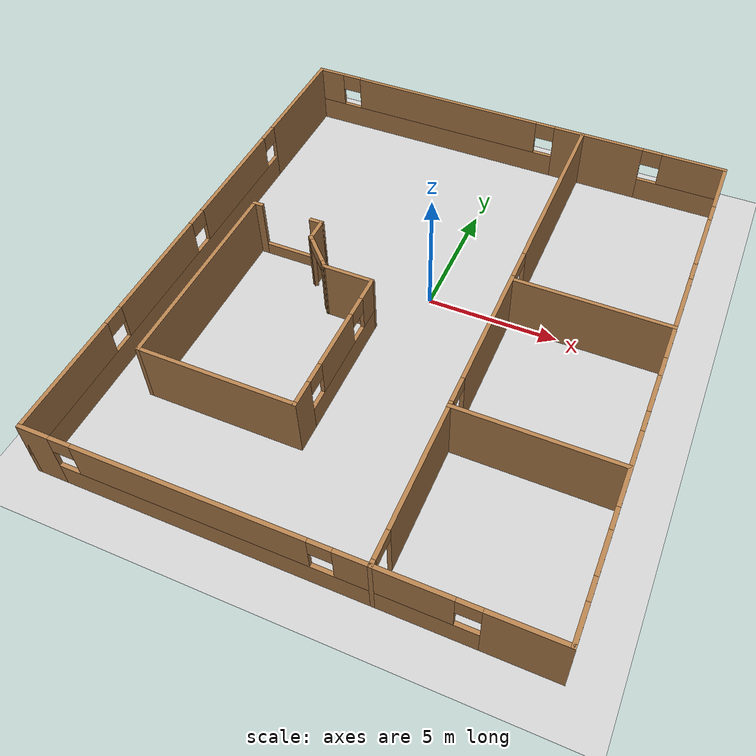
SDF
<sdf version="1.6">
 <world name="default">
  <model name="ground_plane">
   <static>1</static>
   <link name="link">
    <collision name="collision">
     <geometry><plane><normal>0 0 1</normal><size>100 100</size></plane></geometry>
     <surface>
      <contact><collide_bitmask>65535</collide_bitmask></contact>
      <friction><ode><mu>100</mu><mu2>50</mu2></ode></friction>
     </surface>
    </collision>
    <visual name="visual">
     <cast_shadows>0</cast_shadows>
     <geometry><plane><normal>0 0 1</normal><size>100 100</size></plane></geometry>
     <material>
      <script><uri>file://media/materials/scripts/gazebo.material</uri><name>Gazebo/Grey</name></script>
     </material>
    </visual>
   </link>
  </model>
  <scene><ambient>0.4 0.4 0.4 1</ambient><background>0.7 0.7 0.7 1</background><shadows>1</shadows></scene>
  <model name="hospital_room_empty_clone">
   <link name="Wall_0">
    <pose>-4e-06 -3.9165 0 0 -0 0</pose>
    <visual name="Wall_0_Visual">
     <pose>0 0 1.25 0 -0 0</pose>
     <geometry><box><size>6 0.15 2.5</size></box></geometry>
     <material>
      <script><uri>file://media/materials/scripts/gazebo.material</uri><name>Gazebo/Wood</name></script>
      <ambient>1 1 1 1</ambient>
     </material>
     <meta><layer>0</layer></meta>
    </visual>
    <collision name="Wall_0_Collision">
     <pose>0 0 1.25 0 -0 0</pose>
     <geometry><box><size>6 0.15 2.5</size></box></geometry>
     <surface>
      <friction>
       <ode><mu>1</mu><mu2>1</mu2><fdir1>0 0 0</fdir1><slip1>0</slip1><slip2>0</slip2></ode>
       <torsional>
        <coefficient>1</coefficient>
        <patch_radius>0</patch_radius>
        <surface_radius>0</surface_radius>
        <use_patch_radius>1</use_patch_radius>
        <ode><slip>0</slip></ode>
       </torsional>
      </friction>
      <bounce><restitution_coefficient>0</restitution_coefficient><threshold>1e+06</threshold></bounce>
      <contact>
       <collide_without_contact>0</collide_without_contact>
       <collide_without_contact_bitmask>1</collide_without_contact_bitmask>
       <collide_bitmask>1</collide_bitmask>
       <ode>
        <soft_cfm>0</soft_cfm>
        <soft_erp>0.2</soft_erp>
        <kp>1e+13</kp>
        <kd>1</kd>
        <max_vel>0.01</max_vel>
        <min_depth>0</min_depth>
       </ode>
       <bullet>
        <split_impulse>1</split_impulse>
        <split_impulse_penetration_threshold>-0.01</split_impulse_penetration_threshold>
        <soft_cfm>0</soft_cfm>
        <soft_erp>0.2</soft_erp>
        <kp>1e+13</kp>
        <kd>1</kd>
       </bullet>
      </contact>
     </surface>
    </collision>
   </link>
   <link name="Wall_3">
    <pose>-2.925 0 0 0 -0 1.5708</pose>
    <visual name="Wall_3_Visual">
     <pose>0 0 1.25 0 -0 0</pose>
     <geometry><box><size>7.98302 0.15 2.5</size></box></geometry>
     <material>
      <script><uri>file://media/materials/scripts/gazebo.material</uri><name>Gazebo/Wood</name></script>
      <ambient>1 1 1 1</ambient>
     </material>
     <meta><layer>0</layer></meta>
    </visual>
    <collision name="Wall_3_Collision">
     <pose>0 0 1.25 0 -0 0</pose>
     <geometry><box><size>7.98302 0.15 2.5</size></box></geometry>
     <surface>
      <friction>
       <ode><mu>1</mu><mu2>1</mu2><fdir1>0 0 0</fdir1><slip1>0</slip1><slip2>0</slip2></ode>
       <torsional>
        <coefficient>1</coefficient>
        <patch_radius>0</patch_radius>
        <surface_radius>0</surface_radius>
        <use_patch_radius>1</use_patch_radius>
        <ode><slip>0</slip></ode>
       </torsional>
      </friction>
      <bounce><restitution_coefficient>0</restitution_coefficient><threshold>1e+06</threshold></bounce>
      <contact>
       <collide_without_contact>0</collide_without_contact>
       <collide_without_contact_bitmask>1</collide_without_contact_bitmask>
       <collide_bitmask>1</collide_bitmask>
       <ode>
        <soft_cfm>0</soft_cfm>
        <soft_erp>0.2</soft_erp>
        <kp>1e+13</kp>
        <kd>1</kd>
        <max_vel>0.01</max_vel>
        <min_depth>0</min_depth>
       </ode>
       <bullet>
        <split_impulse>1</split_impulse>
        <split_impulse_penetration_threshold>-0.01</split_impulse_penetration_threshold>
        <soft_cfm>0</soft_cfm>
        <soft_erp>0.2</soft_erp>
        <kp>1e+13</kp>
        <kd>1</kd>
       </bullet>
      </contact>
     </surface>
    </collision>
   </link>
   <link name="Wall_4">
    <pose>-1.5 3.9165 0 0 -0 0</pose>
    <visual name="Wall_4_Visual_0">
     <pose>-1.28125 0 1.25 0 -0 0</pose>
     <geometry><box><size>0.437506 0.15 2.5</size></box></geometry>
     <material>
      <script><uri>file://media/materials/scripts/gazebo.material</uri><name>Gazebo/Wood</name></script>
      <ambient>1 1 1 1</ambient>
     </material>
     <meta><layer>0</layer></meta>
    </visual>
    <visual name="Wall_4_Visual_1">
     <pose>0.218753 0 0.25 0 -0 0</pose>
     <geometry><box><size>2.56249 0.15 0.5</size></box></geometry>
     <material>
      <script><uri>file://media/materials/scripts/gazebo.material</uri><name>Gazebo/Wood</name></script>
      <ambient>1 1 1 1</ambient>
     </material>
     <meta><layer>0</layer></meta>
    </visual>
    <visual name="Wall_4_Visual_2">
     <pose>1.21875 0 1.5 0 -0 0</pose>
     <geometry><box><size>0.562494 0.15 2</size></box></geometry>
     <material>
      <script><uri>file://media/materials/scripts/gazebo.material</uri><name>Gazebo/Wood</name></script>
      <ambient>1 1 1 1</ambient>
     </material>
     <meta><layer>0</layer></meta>
    </visual>
    <collision name="Wall_4_Collision_0">
     <pose>-1.28125 0 1.25 0 -0 0</pose>
     <geometry><box><size>0.437506 0.15 2.5</size></box></geometry>
     <surface>
      <friction>
       <ode><mu>1</mu><mu2>1</mu2><fdir1>0 0 0</fdir1><slip1>0</slip1><slip2>0</slip2></ode>
       <torsional>
        <coefficient>1</coefficient>
        <patch_radius>0</patch_radius>
        <surface_radius>0</surface_radius>
        <use_patch_radius>1</use_patch_radius>
        <ode><slip>0</slip></ode>
       </torsional>
      </friction>
      <bounce><restitution_coefficient>0</restitution_coefficient><threshold>1e+06</threshold></bounce>
      <contact>
       <collide_without_contact>0</collide_without_contact>
       <collide_without_contact_bitmask>1</collide_without_contact_bitmask>
       <collide_bitmask>1</collide_bitmask>
       <ode>
        <soft_cfm>0</soft_cfm>
        <soft_erp>0.2</soft_erp>
        <kp>1e+13</kp>
        <kd>1</kd>
        <max_vel>0.01</max_vel>
        <min_depth>0</min_depth>
       </ode>
       <bullet>
        <split_impulse>1</split_impulse>
        <split_impulse_penetration_threshold>-0.01</split_impulse_penetration_threshold>
        <soft_cfm>0</soft_cfm>
        <soft_erp>0.2</soft_erp>
        <kp>1e+13</kp>
        <kd>1</kd>
       </bullet>
      </contact>
     </surface>
    </collision>
    <collision name="Wall_4_Collision_1">
     <pose>0.218753 0 0.25 0 -0 0</pose>
     <geometry><box><size>2.56249 0.15 0.5</size></box></geometry>
     <surface>
      <friction>
       <ode><mu>1</mu><mu2>1</mu2><fdir1>0 0 0</fdir1><slip1>0</slip1><slip2>0</slip2></ode>
       <torsional>
        <coefficient>1</coefficient>
        <patch_radius>0</patch_radius>
        <surface_radius>0</surface_radius>
        <use_patch_radius>1</use_patch_radius>
        <ode><slip>0</slip></ode>
       </torsional>
      </friction>
      <bounce><restitution_coefficient>0</restitution_coefficient><threshold>1e+06</threshold></bounce>
      <contact>
       <collide_without_contact>0</collide_without_contact>
       <collide_without_contact_bitmask>1</collide_without_contact_bitmask>
       <collide_bitmask>1</collide_bitmask>
       <ode>
        <soft_cfm>0</soft_cfm>
        <soft_erp>0.2</soft_erp>
        <kp>1e+13</kp>
        <kd>1</kd>
        <max_vel>0.01</max_vel>
        <min_depth>0</min_depth>
       </ode>
       <bullet>
        <split_impulse>1</split_impulse>
        <split_impulse_penetration_threshold>-0.01</split_impulse_penetration_threshold>
        <soft_cfm>0</soft_cfm>
        <soft_erp>0.2</soft_erp>
        <kp>1e+13</kp>
        <kd>1</kd>
       </bullet>
      </contact>
     </surface>
    </collision>
    <collision name="Wall_4_Collision_2">
     <pose>1.21875 0 1.5 0 -0 0</pose>
     <geometry><box><size>0.562494 0.15 2</size></box></geometry>
     <surface>
      <friction>
       <ode><mu>1</mu><mu2>1</mu2><fdir1>0 0 0</fdir1><slip1>0</slip1><slip2>0</slip2></ode>
       <torsional>
        <coefficient>1</coefficient>
        <patch_radius>0</patch_radius>
        <surface_radius>0</surface_radius>
        <use_patch_radius>1</use_patch_radius>
        <ode><slip>0</slip></ode>
       </torsional>
      </friction>
      <bounce><restitution_coefficient>0</restitution_coefficient><threshold>1e+06</threshold></bounce>
      <contact>
       <collide_without_contact>0</collide_without_contact>
       <collide_without_contact_bitmask>1</collide_without_contact_bitmask>
       <collide_bitmask>1</collide_bitmask>
       <ode>
        <soft_cfm>0</soft_cfm>
        <soft_erp>0.2</soft_erp>
        <kp>1e+13</kp>
        <kd>1</kd>
        <max_vel>0.01</max_vel>
        <min_depth>0</min_depth>
       </ode>
       <bullet>
        <split_impulse>1</split_impulse>
        <split_impulse_penetration_threshold>-0.01</split_impulse_penetration_threshold>
        <soft_cfm>0</soft_cfm>
        <soft_erp>0.2</soft_erp>
        <kp>1e+13</kp>
        <kd>1</kd>
       </bullet>
      </contact>
     </surface>
    </collision>
   </link>
   <link name="Wall_5">
    <pose>-0.075004 3.4915 0 0 0 -1.5708</pose>
    <visual name="Wall_5_Visual">
     <pose>0 0 1.25 0 -0 0</pose>
     <geometry><box><size>1 0.15 2.5</size></box></geometry>
     <material>
      <script><uri>file://media/materials/scripts/gazebo.material</uri><name>Gazebo/Wood</name></script>
      <ambient>1 1 1 1</ambient>
     </material>
     <meta><layer>0</layer></meta>
    </visual>
    <collision name="Wall_5_Collision">
     <pose>0 0 1.25 0 -0 0</pose>
     <geometry><box><size>1 0.15 2.5</size></box></geometry>
     <surface>
      <friction>
       <ode><mu>1</mu><mu2>1</mu2><fdir1>0 0 0</fdir1><slip1>0</slip1><slip2>0</slip2></ode>
       <torsional>
        <coefficient>1</coefficient>
        <patch_radius>0</patch_radius>
        <surface_radius>0</surface_radius>
        <use_patch_radius>1</use_patch_radius>
        <ode><slip>0</slip></ode>
       </torsional>
      </friction>
      <bounce><restitution_coefficient>0</restitution_coefficient><threshold>1e+06</threshold></bounce>
      <contact>
       <collide_without_contact>0</collide_without_contact>
       <collide_without_contact_bitmask>1</collide_without_contact_bitmask>
       <collide_bitmask>1</collide_bitmask>
       <ode>
        <soft_cfm>0</soft_cfm>
        <soft_erp>0.2</soft_erp>
        <kp>1e+13</kp>
        <kd>1</kd>
        <max_vel>0.01</max_vel>
        <min_depth>0</min_depth>
       </ode>
       <bullet>
        <split_impulse>1</split_impulse>
        <split_impulse_penetration_threshold>-0.01</split_impulse_penetration_threshold>
        <soft_cfm>0</soft_cfm>
        <soft_erp>0.2</soft_erp>
        <kp>1e+13</kp>
        <kd>1</kd>
       </bullet>
      </contact>
     </surface>
    </collision>
   </link>
   <link name="Wall_7">
    <pose>2.925 -1 0 0 -0 1.5708</pose>
    <visual name="Wall_7_Visual_0">
     <pose>-2.47597 0 1.25 0 -0 0</pose>
     <geometry><box><size>1.03106 0.15 2.5</size></box></geometry>
     <material>
      <script><uri>file://media/materials/scripts/gazebo.material</uri><name>Gazebo/Wood</name></script>
      <ambient>0.921569 0.807843 0.615686 1</ambient>
     </material>
     <meta><layer>0</layer></meta>
    </visual>
    <visual name="Wall_7_Visual_1">
     <pose>0.515531 0 0.5 0 -0 0</pose>
     <geometry><box><size>4.95194 0.15 1</size></box></geometry>
     <material>
      <script><uri>file://media/materials/scripts/gazebo.material</uri><name>Gazebo/Wood</name></script>
      <ambient>0.921569 0.807843 0.615686 1</ambient>
     </material>
     <meta><layer>0</layer></meta>
    </visual>
    <visual name="Wall_7_Visual_2">
     <pose>0.016139 0 1.75 0 -0 0</pose>
     <geometry><box><size>2.35315 0.15 1.5</size></box></geometry>
     <material>
      <script><uri>file://media/materials/scripts/gazebo.material</uri><name>Gazebo/Wood</name></script>
      <ambient>0.921569 0.807843 0.615686 1</ambient>
     </material>
     <meta><layer>0</layer></meta>
    </visual>
    <visual name="Wall_7_Visual_3">
     <pose>2.49211 0 1.75 0 -0 0</pose>
     <geometry><box><size>0.998785 0.15 1.5</size></box></geometry>
     <material>
      <script><uri>file://media/materials/scripts/gazebo.material</uri><name>Gazebo/Wood</name></script>
      <ambient>0.921569 0.807843 0.615686 1</ambient>
     </material>
     <meta><layer>0</layer></meta>
    </visual>
    <visual name="Wall_7_Visual_4">
     <pose>-1.56044 0 2.15 0 -0 0</pose>
     <geometry><box><size>0.8 0.15 0.7</size></box></geometry>
     <material>
      <script><uri>file://media/materials/scripts/gazebo.material</uri><name>Gazebo/Wood</name></script>
      <ambient>0.921569 0.807843 0.615686 1</ambient>
     </material>
     <meta><layer>0</layer></meta>
    </visual>
    <visual name="Wall_7_Visual_5">
     <pose>1.59272 0 2.15 0 -0 0</pose>
     <geometry><box><size>0.8 0.15 0.7</size></box></geometry>
     <material>
      <script><uri>file://media/materials/scripts/gazebo.material</uri><name>Gazebo/Wood</name></script>
      <ambient>0.921569 0.807843 0.615686 1</ambient>
     </material>
     <meta><layer>0</layer></meta>
    </visual>
    <collision name="Wall_7_Collision_0">
     <pose>-2.47597 0 1.25 0 -0 0</pose>
     <geometry><box><size>1.03106 0.15 2.5</size></box></geometry>
     <surface>
      <friction>
       <ode><mu>1</mu><mu2>1</mu2><fdir1>0 0 0</fdir1><slip1>0</slip1><slip2>0</slip2></ode>
       <torsional>
        <coefficient>1</coefficient>
        <patch_radius>0</patch_radius>
        <surface_radius>0</surface_radius>
        <use_patch_radius>1</use_patch_radius>
        <ode><slip>0</slip></ode>
       </torsional>
      </friction>
      <bounce><restitution_coefficient>0</restitution_coefficient><threshold>1e+06</threshold></bounce>
      <contact>
       <collide_without_contact>0</collide_without_contact>
       <collide_without_contact_bitmask>1</collide_without_contact_bitmask>
       <collide_bitmask>1</collide_bitmask>
       <ode>
        <soft_cfm>0</soft_cfm>
        <soft_erp>0.2</soft_erp>
        <kp>1e+13</kp>
        <kd>1</kd>
        <max_vel>0.01</max_vel>
        <min_depth>0</min_depth>
       </ode>
       <bullet>
        <split_impulse>1</split_impulse>
        <split_impulse_penetration_threshold>-0.01</split_impulse_penetration_threshold>
        <soft_cfm>0</soft_cfm>
        <soft_erp>0.2</soft_erp>
        <kp>1e+13</kp>
        <kd>1</kd>
       </bullet>
      </contact>
     </surface>
    </collision>
    <collision name="Wall_7_Collision_1">
     <pose>0.515531 0 0.5 0 -0 0</pose>
     <geometry><box><size>4.95194 0.15 1</size></box></geometry>
     <surface>
      <friction>
       <ode><mu>1</mu><mu2>1</mu2><fdir1>0 0 0</fdir1><slip1>0</slip1><slip2>0</slip2></ode>
       <torsional>
        <coefficient>1</coefficient>
        <patch_radius>0</patch_radius>
        <surface_radius>0</surface_radius>
        <use_patch_radius>1</use_patch_radius>
        <ode><slip>0</slip></ode>
       </torsional>
      </friction>
      <bounce><restitution_coefficient>0</restitution_coefficient><threshold>1e+06</threshold></bounce>
      <contact>
       <collide_without_contact>0</collide_without_contact>
       <collide_without_contact_bitmask>1</collide_without_contact_bitmask>
       <collide_bitmask>1</collide_bitmask>
       <ode>
        <soft_cfm>0</soft_cfm>
        <soft_erp>0.2</soft_erp>
        <kp>1e+13</kp>
        <kd>1</kd>
        <max_vel>0.01</max_vel>
        <min_depth>0</min_depth>
       </ode>
       <bullet>
        <split_impulse>1</split_impulse>
        <split_impulse_penetration_threshold>-0.01</split_impulse_penetration_threshold>
        <soft_cfm>0</soft_cfm>
        <soft_erp>0.2</soft_erp>
        <kp>1e+13</kp>
        <kd>1</kd>
       </bullet>
      </contact>
     </surface>
    </collision>
    <collision name="Wall_7_Collision_2">
     <pose>0.016139 0 1.75 0 -0 0</pose>
     <geometry><box><size>2.35315 0.15 1.5</size></box></geometry>
     <surface>
      <friction>
       <ode><mu>1</mu><mu2>1</mu2><fdir1>0 0 0</fdir1><slip1>0</slip1><slip2>0</slip2></ode>
       <torsional>
        <coefficient>1</coefficient>
        <patch_radius>0</patch_radius>
        <surface_radius>0</surface_radius>
        <use_patch_radius>1</use_patch_radius>
        <ode><slip>0</slip></ode>
       </torsional>
      </friction>
      <bounce><restitution_coefficient>0</restitution_coefficient><threshold>1e+06</threshold></bounce>
      <contact>
       <collide_without_contact>0</collide_without_contact>
       <collide_without_contact_bitmask>1</collide_without_contact_bitmask>
       <collide_bitmask>1</collide_bitmask>
       <ode>
        <soft_cfm>0</soft_cfm>
        <soft_erp>0.2</soft_erp>
        <kp>1e+13</kp>
        <kd>1</kd>
        <max_vel>0.01</max_vel>
        <min_depth>0</min_depth>
       </ode>
       <bullet>
        <split_impulse>1</split_impulse>
        <split_impulse_penetration_threshold>-0.01</split_impulse_penetration_threshold>
        <soft_cfm>0</soft_cfm>
        <soft_erp>0.2</soft_erp>
        <kp>1e+13</kp>
        <kd>1</kd>
       </bullet>
      </contact>
     </surface>
    </collision>
    <collision name="Wall_7_Collision_3">
     <pose>2.49211 0 1.75 0 -0 0</pose>
     <geometry><box><size>0.998785 0.15 1.5</size></box></geometry>
     <surface>
      <friction>
       <ode><mu>1</mu><mu2>1</mu2><fdir1>0 0 0</fdir1><slip1>0</slip1><slip2>0</slip2></ode>
       <torsional>
        <coefficient>1</coefficient>
        <patch_radius>0</patch_radius>
        <surface_radius>0</surface_radius>
        <use_patch_radius>1</use_patch_radius>
        <ode><slip>0</slip></ode>
       </torsional>
      </friction>
      <bounce><restitution_coefficient>0</restitution_coefficient><threshold>1e+06</threshold></bounce>
      <contact>
       <collide_without_contact>0</collide_without_contact>
       <collide_without_contact_bitmask>1</collide_without_contact_bitmask>
       <collide_bitmask>1</collide_bitmask>
       <ode>
        <soft_cfm>0</soft_cfm>
        <soft_erp>0.2</soft_erp>
        <kp>1e+13</kp>
        <kd>1</kd>
        <max_vel>0.01</max_vel>
        <min_depth>0</min_depth>
       </ode>
       <bullet>
        <split_impulse>1</split_impulse>
        <split_impulse_penetration_threshold>-0.01</split_impulse_penetration_threshold>
        <soft_cfm>0</soft_cfm>
        <soft_erp>0.2</soft_erp>
        <kp>1e+13</kp>
        <kd>1</kd>
       </bullet>
      </contact>
     </surface>
    </collision>
    <collision name="Wall_7_Collision_4">
     <pose>-1.56044 0 2.15 0 -0 0</pose>
     <geometry><box><size>0.8 0.15 0.7</size></box></geometry>
     <surface>
      <friction>
       <ode><mu>1</mu><mu2>1</mu2><fdir1>0 0 0</fdir1><slip1>0</slip1><slip2>0</slip2></ode>
       <torsional>
        <coefficient>1</coefficient>
        <patch_radius>0</patch_radius>
        <surface_radius>0</surface_radius>
        <use_patch_radius>1</use_patch_radius>
        <ode><slip>0</slip></ode>
       </torsional>
      </friction>
      <bounce><restitution_coefficient>0</restitution_coefficient><threshold>1e+06</threshold></bounce>
      <contact>
       <collide_without_contact>0</collide_without_contact>
       <collide_without_contact_bitmask>1</collide_without_contact_bitmask>
       <collide_bitmask>1</collide_bitmask>
       <ode>
        <soft_cfm>0</soft_cfm>
        <soft_erp>0.2</soft_erp>
        <kp>1e+13</kp>
        <kd>1</kd>
        <max_vel>0.01</max_vel>
        <min_depth>0</min_depth>
       </ode>
       <bullet>
        <split_impulse>1</split_impulse>
        <split_impulse_penetration_threshold>-0.01</split_impulse_penetration_threshold>
        <soft_cfm>0</soft_cfm>
        <soft_erp>0.2</soft_erp>
        <kp>1e+13</kp>
        <kd>1</kd>
       </bullet>
      </contact>
     </surface>
    </collision>
    <collision name="Wall_7_Collision_5">
     <pose>1.59272 0 2.15 0 -0 0</pose>
     <geometry><box><size>0.8 0.15 0.7</size></box></geometry>
     <surface>
      <friction>
       <ode><mu>1</mu><mu2>1</mu2><fdir1>0 0 0</fdir1><slip1>0</slip1><slip2>0</slip2></ode>
       <torsional>
        <coefficient>1</coefficient>
        <patch_radius>0</patch_radius>
        <surface_radius>0</surface_radius>
        <use_patch_radius>1</use_patch_radius>
        <ode><slip>0</slip></ode>
       </torsional>
      </friction>
      <bounce><restitution_coefficient>0</restitution_coefficient><threshold>1e+06</threshold></bounce>
      <contact>
       <collide_without_contact>0</collide_without_contact>
       <collide_without_contact_bitmask>1</collide_without_contact_bitmask>
       <collide_bitmask>1</collide_bitmask>
       <ode>
        <soft_cfm>0</soft_cfm>
        <soft_erp>0.2</soft_erp>
        <kp>1e+13</kp>
        <kd>1</kd>
        <max_vel>0.01</max_vel>
        <min_depth>0</min_depth>
       </ode>
       <bullet>
        <split_impulse>1</split_impulse>
        <split_impulse_penetration_threshold>-0.01</split_impulse_penetration_threshold>
        <soft_cfm>0</soft_cfm>
        <soft_erp>0.2</soft_erp>
        <kp>1e+13</kp>
        <kd>1</kd>
       </bullet>
      </contact>
     </surface>
    </collision>
   </link>
   <link name="Wall_8">
    <pose>2 1.9166 0 0 -0 3.14148</pose>
    <visual name="Wall_8_Visual">
     <pose>0 0 1.25 0 -0 0</pose>
     <geometry><box><size>2 0.15 2.5</size></box></geometry>
     <material>
      <script><uri>file://media/materials/scripts/gazebo.material</uri><name>Gazebo/Wood</name></script>
      <ambient>1 1 1 1</ambient>
     </material>
     <meta><layer>0</layer></meta>
    </visual>
    <collision name="Wall_8_Collision">
     <pose>0 0 1.25 0 -0 0</pose>
     <geometry><box><size>2 0.15 2.5</size></box></geometry>
     <surface>
      <friction>
       <ode><mu>1</mu><mu2>1</mu2><fdir1>0 0 0</fdir1><slip1>0</slip1><slip2>0</slip2></ode>
       <torsional>
        <coefficient>1</coefficient>
        <patch_radius>0</patch_radius>
        <surface_radius>0</surface_radius>
        <use_patch_radius>1</use_patch_radius>
        <ode><slip>0</slip></ode>
       </torsional>
      </friction>
      <bounce><restitution_coefficient>0</restitution_coefficient><threshold>1e+06</threshold></bounce>
      <contact>
       <collide_without_contact>0</collide_without_contact>
       <collide_without_contact_bitmask>1</collide_without_contact_bitmask>
       <collide_bitmask>1</collide_bitmask>
       <ode>
        <soft_cfm>0</soft_cfm>
        <soft_erp>0.2</soft_erp>
        <kp>1e+13</kp>
        <kd>1</kd>
        <max_vel>0.01</max_vel>
        <min_depth>0</min_depth>
       </ode>
       <bullet>
        <split_impulse>1</split_impulse>
        <split_impulse_penetration_threshold>-0.01</split_impulse_penetration_threshold>
        <soft_cfm>0</soft_cfm>
        <soft_erp>0.2</soft_erp>
        <kp>1e+13</kp>
        <kd>1</kd>
       </bullet>
      </contact>
     </surface>
    </collision>
   </link>
   <link name="Wall_9">
    <pose>0.499996 2.4916 0 0 -0 2.35628</pose>
    <visual name="Wall_9_Visual_1">
     <pose>0.785148 0 1.25 0 -0 0</pose>
     <geometry><box><size>0.205905 0.15 2.5</size></box></geometry>
     <material>
      <script><uri>file://media/materials/scripts/gazebo.material</uri><name>Gazebo/Wood</name></script>
      <ambient>1 1 1 1</ambient>
     </material>
     <meta><layer>0</layer></meta>
    </visual>
    <visual name="Wall_9_Visual_0">
     <pose>-0.702952 0 1.25 0 -0 0</pose>
     <geometry><box><size>0.370295 0.15 2.5</size></box></geometry>
     <material>
      <script><uri>file://media/materials/scripts/gazebo.material</uri><name>Gazebo/Wood</name></script>
      <ambient>1 1 1 1</ambient>
     </material>
     <meta><layer>0</layer></meta>
    </visual>
    <visual name="Wall_9_Visual_2">
     <pose>0.082195 0 2.25 0 -0 0</pose>
     <geometry><box><size>1.2 0.15 0.5</size></box></geometry>
     <material>
      <script><uri>file://media/materials/scripts/gazebo.material</uri><name>Gazebo/Wood</name></script>
      <ambient>1 1 1 1</ambient>
     </material>
     <meta><layer>0</layer></meta>
    </visual>
    <collision name="Wall_9_Collision_0">
     <pose>-0.702952 0 1.25 0 -0 0</pose>
     <geometry><box><size>0.370295 0.15 2.5</size></box></geometry>
     <surface>
      <friction>
       <ode><mu>1</mu><mu2>1</mu2><fdir1>0 0 0</fdir1><slip1>0</slip1><slip2>0</slip2></ode>
       <torsional>
        <coefficient>1</coefficient>
        <patch_radius>0</patch_radius>
        <surface_radius>0</surface_radius>
        <use_patch_radius>1</use_patch_radius>
        <ode><slip>0</slip></ode>
       </torsional>
      </friction>
      <bounce><restitution_coefficient>0</restitution_coefficient><threshold>1e+06</threshold></bounce>
      <contact>
       <collide_without_contact>0</collide_without_contact>
       <collide_without_contact_bitmask>1</collide_without_contact_bitmask>
       <collide_bitmask>1</collide_bitmask>
       <ode>
        <soft_cfm>0</soft_cfm>
        <soft_erp>0.2</soft_erp>
        <kp>1e+13</kp>
        <kd>1</kd>
        <max_vel>0.01</max_vel>
        <min_depth>0</min_depth>
       </ode>
       <bullet>
        <split_impulse>1</split_impulse>
        <split_impulse_penetration_threshold>-0.01</split_impulse_penetration_threshold>
        <soft_cfm>0</soft_cfm>
        <soft_erp>0.2</soft_erp>
        <kp>1e+13</kp>
        <kd>1</kd>
       </bullet>
      </contact>
     </surface>
    </collision>
    <collision name="Wall_9_Collision_1">
     <pose>0.785148 0 1.25 0 -0 0</pose>
     <geometry><box><size>0.205905 0.15 2.5</size></box></geometry>
     <surface>
      <friction>
       <ode><mu>1</mu><mu2>1</mu2><fdir1>0 0 0</fdir1><slip1>0</slip1><slip2>0</slip2></ode>
       <torsional>
        <coefficient>1</coefficient>
        <patch_radius>0</patch_radius>
        <surface_radius>0</surface_radius>
        <use_patch_radius>1</use_patch_radius>
        <ode><slip>0</slip></ode>
       </torsional>
      </friction>
      <bounce><restitution_coefficient>0</restitution_coefficient><threshold>1e+06</threshold></bounce>
      <contact>
       <collide_without_contact>0</collide_without_contact>
       <collide_without_contact_bitmask>1</collide_without_contact_bitmask>
       <collide_bitmask>1</collide_bitmask>
       <ode>
        <soft_cfm>0</soft_cfm>
        <soft_erp>0.2</soft_erp>
        <kp>1e+13</kp>
        <kd>1</kd>
        <max_vel>0.01</max_vel>
        <min_depth>0</min_depth>
       </ode>
       <bullet>
        <split_impulse>1</split_impulse>
        <split_impulse_penetration_threshold>-0.01</split_impulse_penetration_threshold>
        <soft_cfm>0</soft_cfm>
        <soft_erp>0.2</soft_erp>
        <kp>1e+13</kp>
        <kd>1</kd>
       </bullet>
      </contact>
     </surface>
    </collision>
    <collision name="Wall_9_Collision_2">
     <pose>0.082195 0 2.25 0 -0 0</pose>
     <geometry><box><size>1.2 0.15 0.5</size></box></geometry>
     <surface>
      <friction>
       <ode><mu>1</mu><mu2>1</mu2><fdir1>0 0 0</fdir1><slip1>0</slip1><slip2>0</slip2></ode>
       <torsional>
        <coefficient>1</coefficient>
        <patch_radius>0</patch_radius>
        <surface_radius>0</surface_radius>
        <use_patch_radius>1</use_patch_radius>
        <ode><slip>0</slip></ode>
       </torsional>
      </friction>
      <bounce><restitution_coefficient>0</restitution_coefficient><threshold>1e+06</threshold></bounce>
      <contact>
       <collide_without_contact>0</collide_without_contact>
       <collide_without_contact_bitmask>1</collide_without_contact_bitmask>
       <collide_bitmask>1</collide_bitmask>
       <ode>
        <soft_cfm>0</soft_cfm>
        <soft_erp>0.2</soft_erp>
        <kp>1e+13</kp>
        <kd>1</kd>
        <max_vel>0.01</max_vel>
        <min_depth>0</min_depth>
       </ode>
       <bullet>
        <split_impulse>1</split_impulse>
        <split_impulse_penetration_threshold>-0.01</split_impulse_penetration_threshold>
        <soft_cfm>0</soft_cfm>
        <soft_erp>0.2</soft_erp>
        <kp>1e+13</kp>
        <kd>1</kd>
       </bullet>
      </contact>
     </surface>
    </collision>
   </link>
   <static>1</static>
   <pose>-4.36802 -3.9385 0 0 -0 0</pose>
  </model>
  <light name="sun" type="directional">
   <pose>-5.5 -6.5 10 0 -0 0</pose>
   <diffuse>1 1 1 1</diffuse>
   <specular>0.2 0.2 0.2 1</specular>
   <attenuation>
    <range>1000</range>
    <constant>0.9</constant>
    <linear>0.01</linear>
    <quadratic>0.001</quadratic>
   </attenuation>
   <cast_shadows>0</cast_shadows>
   <direction>0 0 -1</direction>
  </light>
  <model name="hospital_room2_empty_0">
   <pose>6 -1.5 0 0 -0 0</pose>
   <link name="Wall_0">
    <pose>-2.925 0 0 0 -0 1.5708</pose>
    <visual name="Wall_0_Visual_0">
     <pose>-10.3642 0 1.25 0 -0 0</pose>
     <geometry><box><size>0.271667 0.15 2.5</size></box></geometry>
     <material>
      <script><uri>file://media/materials/scripts/gazebo.material</uri><name>Gazebo/Wood</name></script>
      <ambient>1 1 1 1</ambient>
     </material>
     <meta><layer>0</layer></meta>
    </visual>
    <collision name="Wall_0_Collision_0">
     <geometry><box><size>0.271667 0.15 2.5</size></box></geometry>
     <pose>-10.3642 0 1.25 0 -0 0</pose>
    </collision>
    <visual name="Wall_0_Visual_1">
     <pose>-6.76986 0 1.25 0 -0 0</pose>
     <geometry><box><size>4.91694 0.15 2.5</size></box></geometry>
     <material>
      <script><uri>file://media/materials/scripts/gazebo.material</uri><name>Gazebo/Wood</name></script>
      <ambient>1 1 1 1</ambient>
     </material>
     <meta><layer>0</layer></meta>
    </visual>
    <collision name="Wall_0_Collision_1">
     <geometry><box><size>4.91694 0.15 2.5</size></box></geometry>
     <pose>-6.76986 0 1.25 0 -0 0</pose>
    </collision>
    <visual name="Wall_0_Visual_2">
     <pose>-0.820784 0 1.25 0 -0 0</pose>
     <geometry><box><size>4.98121 0.15 2.5</size></box></geometry>
     <material>
      <script><uri>file://media/materials/scripts/gazebo.material</uri><name>Gazebo/Wood</name></script>
      <ambient>1 1 1 1</ambient>
     </material>
     <meta><layer>0</layer></meta>
    </visual>
    <collision name="Wall_0_Collision_2">
     <geometry><box><size>4.98121 0.15 2.5</size></box></geometry>
     <pose>-0.820784 0 1.25 0 -0 0</pose>
    </collision>
    <visual name="Wall_0_Visual_3">
     <pose>6.68491 0 1.25 0 -0 0</pose>
     <geometry><box><size>7.63018 0.15 2.5</size></box></geometry>
     <material>
      <script><uri>file://media/materials/scripts/gazebo.material</uri><name>Gazebo/Wood</name></script>
      <ambient>1 1 1 1</ambient>
     </material>
     <meta><layer>0</layer></meta>
    </visual>
    <collision name="Wall_0_Collision_3">
     <geometry><box><size>7.63018 0.15 2.5</size></box></geometry>
     <pose>6.68491 0 1.25 0 -0 0</pose>
    </collision>
    <visual name="Wall_0_Visual_4">
     <pose>-9.72833 0 2.25 0 -0 0</pose>
     <geometry><box><size>1 0.15 0.5</size></box></geometry>
     <material>
      <script><uri>file://media/materials/scripts/gazebo.material</uri><name>Gazebo/Wood</name></script>
      <ambient>1 1 1 1</ambient>
     </material>
     <meta><layer>0</layer></meta>
    </visual>
    <collision name="Wall_0_Collision_4">
     <geometry><box><size>1 0.15 0.5</size></box></geometry>
     <pose>-9.72833 0 2.25 0 -0 0</pose>
    </collision>
    <visual name="Wall_0_Visual_5">
     <pose>-3.81139 0 2.25 0 -0 0</pose>
     <geometry><box><size>1 0.15 0.5</size></box></geometry>
     <material>
      <script><uri>file://media/materials/scripts/gazebo.material</uri><name>Gazebo/Wood</name></script>
      <ambient>1 1 1 1</ambient>
     </material>
     <meta><layer>0</layer></meta>
    </visual>
    <collision name="Wall_0_Collision_5">
     <geometry><box><size>1 0.15 0.5</size></box></geometry>
     <pose>-3.81139 0 2.25 0 -0 0</pose>
    </collision>
    <visual name="Wall_0_Visual_6">
     <pose>2.26982 0 2.25 0 -0 0</pose>
     <geometry><box><size>1.2 0.15 0.5</size></box></geometry>
     <material>
      <script><uri>file://media/materials/scripts/gazebo.material</uri><name>Gazebo/Wood</name></script>
      <ambient>1 1 1 1</ambient>
     </material>
     <meta><layer>0</layer></meta>
    </visual>
    <collision name="Wall_0_Collision_6">
     <geometry><box><size>1.2 0.15 0.5</size></box></geometry>
     <pose>2.26982 0 2.25 0 -0 0</pose>
    </collision>
   </link>
   <link name="Wall_10">
    <collision name="Wall_10_Collision">
     <geometry><box><size>6 0.15 2.5</size></box></geometry>
     <pose>0 0 1.25 0 -0 0</pose>
    </collision>
    <visual name="Wall_10_Visual">
     <pose>0 0 1.25 0 -0 0</pose>
     <geometry><box><size>6 0.15 2.5</size></box></geometry>
     <material>
      <script><uri>file://media/materials/scripts/gazebo.material</uri><name>Gazebo/Wood</name></script>
      <ambient>1 1 1 1</ambient>
     </material>
     <meta><layer>0</layer></meta>
    </visual>
    <pose>-0 -4.5 0 0 -0 0</pose>
   </link>
   <link name="Wall_2">
    <pose>-0 10.425 0 0 -0 0</pose>
    <visual name="Wall_2_Visual_0">
     <pose>-1.69561 0 1.25 0 -0 0</pose>
     <geometry><box><size>2.60879 0.15 2.5</size></box></geometry>
     <material>
      <script><uri>file://media/materials/scripts/gazebo.material</uri><name>Gazebo/Wood</name></script>
      <ambient>1 1 1 1</ambient>
     </material>
     <meta><layer>0</layer></meta>
    </visual>
    <collision name="Wall_2_Collision_0">
     <geometry><box><size>2.60879 0.15 2.5</size></box></geometry>
     <pose>-1.69561 0 1.25 0 -0 0</pose>
    </collision>
    <visual name="Wall_2_Visual_1">
     <pose>1.30439 0 0.5 0 -0 0</pose>
     <geometry><box><size>3.39121 0.15 1</size></box></geometry>
     <material>
      <script><uri>file://media/materials/scripts/gazebo.material</uri><name>Gazebo/Wood</name></script>
      <ambient>1 1 1 1</ambient>
     </material>
     <meta><layer>0</layer></meta>
    </visual>
    <collision name="Wall_2_Collision_1">
     <geometry><box><size>3.39121 0.15 1</size></box></geometry>
     <pose>1.30439 0 0.5 0 -0 0</pose>
    </collision>
    <visual name="Wall_2_Visual_2">
     <pose>1.7044 0 1.75 0 -0 0</pose>
     <geometry><box><size>2.59121 0.15 1.5</size></box></geometry>
     <material>
      <script><uri>file://media/materials/scripts/gazebo.material</uri><name>Gazebo/Wood</name></script>
      <ambient>1 1 1 1</ambient>
     </material>
     <meta><layer>0</layer></meta>
    </visual>
    <collision name="Wall_2_Collision_2">
     <geometry><box><size>2.59121 0.15 1.5</size></box></geometry>
     <pose>1.7044 0 1.75 0 -0 0</pose>
    </collision>
    <visual name="Wall_2_Visual_3">
     <pose>0.008791 0 2.15 0 -0 0</pose>
     <geometry><box><size>0.8 0.15 0.7</size></box></geometry>
     <material>
      <script><uri>file://media/materials/scripts/gazebo.material</uri><name>Gazebo/Wood</name></script>
      <ambient>1 1 1 1</ambient>
     </material>
     <meta><layer>0</layer></meta>
    </visual>
    <collision name="Wall_2_Collision_3">
     <geometry><box><size>0.8 0.15 0.7</size></box></geometry>
     <pose>0.008791 0 2.15 0 -0 0</pose>
    </collision>
   </link>
   <link name="Wall_4">
    <pose>2.925 0 0 0 -0 -1.5708</pose>
    <visual name="Wall_4_Visual_0">
     <pose>-9.29746 0 1.25 0 -0 0</pose>
     <geometry><box><size>2.40508 0.15 2.5</size></box></geometry>
     <material>
      <script><uri>file://media/materials/scripts/gazebo.material</uri><name>Gazebo/Wood</name></script>
      <ambient>1 1 1 1</ambient>
     </material>
     <meta><layer>0</layer></meta>
    </visual>
    <collision name="Wall_4_Collision_0">
     <geometry><box><size>2.40508 0.15 2.5</size></box></geometry>
     <pose>-9.29746 0 1.25 0 -0 0</pose>
    </collision>
    <visual name="Wall_4_Visual_1">
     <pose>1.20254 0 0.5 0 -0 0</pose>
     <geometry><box><size>18.5949 0.15 1</size></box></geometry>
     <material>
      <script><uri>file://media/materials/scripts/gazebo.material</uri><name>Gazebo/Wood</name></script>
      <ambient>1 1 1 1</ambient>
     </material>
     <meta><layer>0</layer></meta>
    </visual>
    <collision name="Wall_4_Collision_1">
     <geometry><box><size>18.5949 0.15 1</size></box></geometry>
     <pose>1.20254 0 0.5 0 -0 0</pose>
    </collision>
    <visual name="Wall_4_Visual_2">
     <pose>-6.03126 0 1.75 0 -0 0</pose>
     <geometry><box><size>2.52732 0.15 1.5</size></box></geometry>
     <material>
      <script><uri>file://media/materials/scripts/gazebo.material</uri><name>Gazebo/Wood</name></script>
      <ambient>1 1 1 1</ambient>
     </material>
     <meta><layer>0</layer></meta>
    </visual>
    <collision name="Wall_4_Collision_2">
     <geometry><box><size>2.52732 0.15 1.5</size></box></geometry>
     <pose>-6.03126 0 1.75 0 -0 0</pose>
    </collision>
    <visual name="Wall_4_Visual_3">
     <pose>-2.02155 0 1.75 0 -0 0</pose>
     <geometry><box><size>3.8921 0.15 1.5</size></box></geometry>
     <material>
      <script><uri>file://media/materials/scripts/gazebo.material</uri><name>Gazebo/Wood</name></script>
      <ambient>1 1 1 1</ambient>
     </material>
     <meta><layer>0</layer></meta>
    </visual>
    <collision name="Wall_4_Collision_3">
     <geometry><box><size>3.8921 0.15 1.5</size></box></geometry>
     <pose>-2.02155 0 1.75 0 -0 0</pose>
    </collision>
    <visual name="Wall_4_Visual_4">
     <pose>1.49744 0 1.75 0 -0 0</pose>
     <geometry><box><size>1.54589 0.15 1.5</size></box></geometry>
     <material>
      <script><uri>file://media/materials/scripts/gazebo.material</uri><name>Gazebo/Wood</name></script>
      <ambient>1 1 1 1</ambient>
     </material>
     <meta><layer>0</layer></meta>
    </visual>
    <collision name="Wall_4_Collision_4">
     <geometry><box><size>1.54589 0.15 1.5</size></box></geometry>
     <pose>1.49744 0 1.75 0 -0 0</pose>
    </collision>
    <visual name="Wall_4_Visual_5">
     <pose>4.50824 0 1.75 0 -0 0</pose>
     <geometry><box><size>2.87571 0.15 1.5</size></box></geometry>
     <material>
      <script><uri>file://media/materials/scripts/gazebo.material</uri><name>Gazebo/Wood</name></script>
      <ambient>1 1 1 1</ambient>
     </material>
     <meta><layer>0</layer></meta>
    </visual>
    <collision name="Wall_4_Collision_5">
     <geometry><box><size>2.87571 0.15 1.5</size></box></geometry>
     <pose>4.50824 0 1.75 0 -0 0</pose>
    </collision>
    <visual name="Wall_4_Visual_6">
     <pose>7.51696 0 1.75 0 -0 0</pose>
     <geometry><box><size>1.54173 0.15 1.5</size></box></geometry>
     <material>
      <script><uri>file://media/materials/scripts/gazebo.material</uri><name>Gazebo/Wood</name></script>
      <ambient>1 1 1 1</ambient>
     </material>
     <meta><layer>0</layer></meta>
    </visual>
    <collision name="Wall_4_Collision_6">
     <geometry><box><size>1.54173 0.15 1.5</size></box></geometry>
     <pose>7.51696 0 1.75 0 -0 0</pose>
    </collision>
    <visual name="Wall_4_Visual_7">
     <pose>9.79392 0 1.75 0 -0 0</pose>
     <geometry><box><size>1.41217 0.15 1.5</size></box></geometry>
     <material>
      <script><uri>file://media/materials/scripts/gazebo.material</uri><name>Gazebo/Wood</name></script>
      <ambient>1 1 1 1</ambient>
     </material>
     <meta><layer>0</layer></meta>
    </visual>
    <collision name="Wall_4_Collision_7">
     <geometry><box><size>1.41217 0.15 1.5</size></box></geometry>
     <pose>9.79392 0 1.75 0 -0 0</pose>
    </collision>
    <visual name="Wall_4_Visual_8">
     <pose>-7.69492 0 2.15 0 -0 0</pose>
     <geometry><box><size>0.8 0.15 0.7</size></box></geometry>
     <material>
      <script><uri>file://media/materials/scripts/gazebo.material</uri><name>Gazebo/Wood</name></script>
      <ambient>1 1 1 1</ambient>
     </material>
     <meta><layer>0</layer></meta>
    </visual>
    <collision name="Wall_4_Collision_8">
     <geometry><box><size>0.8 0.15 0.7</size></box></geometry>
     <pose>-7.69492 0 2.15 0 -0 0</pose>
    </collision>
    <visual name="Wall_4_Visual_9">
     <pose>-4.36759 0 2.15 0 -0 0</pose>
     <geometry><box><size>0.8 0.15 0.7</size></box></geometry>
     <material>
      <script><uri>file://media/materials/scripts/gazebo.material</uri><name>Gazebo/Wood</name></script>
      <ambient>1 1 1 1</ambient>
     </material>
     <meta><layer>0</layer></meta>
    </visual>
    <collision name="Wall_4_Collision_9">
     <geometry><box><size>0.8 0.15 0.7</size></box></geometry>
     <pose>-4.36759 0 2.15 0 -0 0</pose>
    </collision>
    <visual name="Wall_4_Visual_10">
     <pose>0.324501 0 2.15 0 -0 0</pose>
     <geometry><box><size>0.8 0.15 0.7</size></box></geometry>
     <material>
      <script><uri>file://media/materials/scripts/gazebo.material</uri><name>Gazebo/Wood</name></script>
      <ambient>1 1 1 1</ambient>
     </material>
     <meta><layer>0</layer></meta>
    </visual>
    <collision name="Wall_4_Collision_10">
     <geometry><box><size>0.8 0.15 0.7</size></box></geometry>
     <pose>0.324501 0 2.15 0 -0 0</pose>
    </collision>
    <visual name="Wall_4_Visual_11">
     <pose>2.67039 0 2.15 0 -0 0</pose>
     <geometry><box><size>0.8 0.15 0.7</size></box></geometry>
     <material>
      <script><uri>file://media/materials/scripts/gazebo.material</uri><name>Gazebo/Wood</name></script>
      <ambient>1 1 1 1</ambient>
     </material>
     <meta><layer>0</layer></meta>
    </visual>
    <collision name="Wall_4_Collision_11">
     <geometry><box><size>0.8 0.15 0.7</size></box></geometry>
     <pose>2.67039 0 2.15 0 -0 0</pose>
    </collision>
    <visual name="Wall_4_Visual_12">
     <pose>6.3461 0 2.15 0 -0 0</pose>
     <geometry><box><size>0.8 0.15 0.7</size></box></geometry>
     <material>
      <script><uri>file://media/materials/scripts/gazebo.material</uri><name>Gazebo/Wood</name></script>
      <ambient>1 1 1 1</ambient>
     </material>
     <meta><layer>0</layer></meta>
    </visual>
    <collision name="Wall_4_Collision_12">
     <geometry><box><size>0.8 0.15 0.7</size></box></geometry>
     <pose>6.3461 0 2.15 0 -0 0</pose>
    </collision>
    <visual name="Wall_4_Visual_13">
     <pose>8.68783 0 2.15 0 -0 0</pose>
     <geometry><box><size>0.8 0.15 0.7</size></box></geometry>
     <material>
      <script><uri>file://media/materials/scripts/gazebo.material</uri><name>Gazebo/Wood</name></script>
      <ambient>1 1 1 1</ambient>
     </material>
     <meta><layer>0</layer></meta>
    </visual>
    <collision name="Wall_4_Collision_13">
     <geometry><box><size>0.8 0.15 0.7</size></box></geometry>
     <pose>8.68783 0 2.15 0 -0 0</pose>
    </collision>
   </link>
   <link name="Wall_6">
    <pose>-0 -10.425 0 0 -0 3.14159</pose>
    <visual name="Wall_6_Visual_0">
     <pose>-1.7044 0 1.25 0 -0 0</pose>
     <geometry><box><size>2.59121 0.15 2.5</size></box></geometry>
     <material>
      <script><uri>file://media/materials/scripts/gazebo.material</uri><name>Gazebo/Wood</name></script>
      <ambient>1 1 1 1</ambient>
     </material>
     <meta><layer>0</layer></meta>
    </visual>
    <collision name="Wall_6_Collision_0">
     <geometry><box><size>2.59121 0.15 2.5</size></box></geometry>
     <pose>-1.7044 0 1.25 0 -0 0</pose>
    </collision>
    <visual name="Wall_6_Visual_1">
     <pose>1.2956 0 0.5 0 -0 0</pose>
     <geometry><box><size>3.40879 0.15 1</size></box></geometry>
     <material>
      <script><uri>file://media/materials/scripts/gazebo.material</uri><name>Gazebo/Wood</name></script>
      <ambient>1 1 1 1</ambient>
     </material>
     <meta><layer>0</layer></meta>
    </visual>
    <collision name="Wall_6_Collision_1">
     <geometry><box><size>3.40879 0.15 1</size></box></geometry>
     <pose>1.2956 0 0.5 0 -0 0</pose>
    </collision>
    <visual name="Wall_6_Visual_2">
     <pose>1.69561 0 1.75 0 -0 0</pose>
     <geometry><box><size>2.60879 0.15 1.5</size></box></geometry>
     <material>
      <script><uri>file://media/materials/scripts/gazebo.material</uri><name>Gazebo/Wood</name></script>
      <ambient>1 1 1 1</ambient>
     </material>
     <meta><layer>0</layer></meta>
    </visual>
    <collision name="Wall_6_Collision_2">
     <geometry><box><size>2.60879 0.15 1.5</size></box></geometry>
     <pose>1.69561 0 1.75 0 -0 0</pose>
    </collision>
    <visual name="Wall_6_Visual_3">
     <pose>-0.008791 0 2.15 0 -0 0</pose>
     <geometry><box><size>0.8 0.15 0.7</size></box></geometry>
     <material>
      <script><uri>file://media/materials/scripts/gazebo.material</uri><name>Gazebo/Wood</name></script>
      <ambient>1 1 1 1</ambient>
     </material>
     <meta><layer>0</layer></meta>
    </visual>
    <collision name="Wall_6_Collision_3">
     <geometry><box><size>0.8 0.15 0.7</size></box></geometry>
     <pose>-0.008791 0 2.15 0 -0 0</pose>
    </collision>
   </link>
   <link name="Wall_8">
    <collision name="Wall_8_Collision">
     <geometry><box><size>6 0.15 2.5</size></box></geometry>
     <pose>0 0 1.25 0 -0 0</pose>
    </collision>
    <visual name="Wall_8_Visual">
     <pose>0 0 1.25 0 -0 0</pose>
     <geometry><box><size>6 0.15 2.5</size></box></geometry>
     <material>
      <script><uri>file://media/materials/scripts/gazebo.material</uri><name>Gazebo/Wood</name></script>
      <ambient>1 1 1 1</ambient>
     </material>
     <meta><layer>0</layer></meta>
    </visual>
    <pose>-0 1.5 0 0 -0 0</pose>
   </link>
   <static>1</static>
  </model>
  <model name="hospital_corridor_2">
   <pose>-2.9625 -1.5 0 0 -0 0</pose>
   <link name="Wall_12">
    <pose>1e-06 10.425 0 0 -0 3.14159</pose>
    <visual name="Wall_12_Visual_0">
     <pose>-5.44242 0 1.25 0 -0 0</pose>
     <geometry><box><size>1.19015 0.15 2.5</size></box></geometry>
     <material>
      <script><uri>file://media/materials/scripts/gazebo.material</uri><name>Gazebo/Wood</name></script>
      <ambient>1 1 1 1</ambient>
     </material>
     <meta><layer>0</layer></meta>
    </visual>
    <collision name="Wall_12_Collision_0">
     <geometry><box><size>1.19015 0.15 2.5</size></box></geometry>
     <pose>-5.44242 0 1.25 0 -0 0</pose>
    </collision>
    <visual name="Wall_12_Visual_1">
     <pose>0.595076 0 0.5 0 -0 0</pose>
     <geometry><box><size>10.8848 0.15 1</size></box></geometry>
     <material>
      <script><uri>file://media/materials/scripts/gazebo.material</uri><name>Gazebo/Wood</name></script>
      <ambient>1 1 1 1</ambient>
     </material>
     <meta><layer>0</layer></meta>
    </visual>
    <collision name="Wall_12_Collision_1">
     <geometry><box><size>10.8848 0.15 1</size></box></geometry>
     <pose>0.595076 0 0.5 0 -0 0</pose>
    </collision>
    <visual name="Wall_12_Visual_2">
     <pose>0.005295 0 1.75 0 -0 0</pose>
     <geometry><box><size>8.10528 0.15 1.5</size></box></geometry>
     <material>
      <script><uri>file://media/materials/scripts/gazebo.material</uri><name>Gazebo/Wood</name></script>
      <ambient>1 1 1 1</ambient>
     </material>
     <meta><layer>0</layer></meta>
    </visual>
    <collision name="Wall_12_Collision_2">
     <geometry><box><size>8.10528 0.15 1.5</size></box></geometry>
     <pose>0.005295 0 1.75 0 -0 0</pose>
    </collision>
    <visual name="Wall_12_Visual_3">
     <pose>5.44772 0 1.75 0 -0 0</pose>
     <geometry><box><size>1.17956 0.15 1.5</size></box></geometry>
     <material>
      <script><uri>file://media/materials/scripts/gazebo.material</uri><name>Gazebo/Wood</name></script>
      <ambient>1 1 1 1</ambient>
     </material>
     <meta><layer>0</layer></meta>
    </visual>
    <collision name="Wall_12_Collision_3">
     <geometry><box><size>1.17956 0.15 1.5</size></box></geometry>
     <pose>5.44772 0 1.75 0 -0 0</pose>
    </collision>
    <visual name="Wall_12_Visual_4">
     <pose>-4.44735 0 2.15 0 -0 0</pose>
     <geometry><box><size>0.8 0.15 0.7</size></box></geometry>
     <material>
      <script><uri>file://media/materials/scripts/gazebo.material</uri><name>Gazebo/Wood</name></script>
      <ambient>1 1 1 1</ambient>
     </material>
     <meta><layer>0</layer></meta>
    </visual>
    <collision name="Wall_12_Collision_4">
     <geometry><box><size>0.8 0.15 0.7</size></box></geometry>
     <pose>-4.44735 0 2.15 0 -0 0</pose>
    </collision>
    <visual name="Wall_12_Visual_5">
     <pose>4.45794 0 2.15 0 -0 0</pose>
     <geometry><box><size>0.8 0.15 0.7</size></box></geometry>
     <material>
      <script><uri>file://media/materials/scripts/gazebo.material</uri><name>Gazebo/Wood</name></script>
      <ambient>1 1 1 1</ambient>
     </material>
     <meta><layer>0</layer></meta>
    </visual>
    <collision name="Wall_12_Collision_5">
     <geometry><box><size>0.8 0.15 0.7</size></box></geometry>
     <pose>4.45794 0 2.15 0 -0 0</pose>
    </collision>
   </link>
   <link name="Wall_13">
    <pose>-5.9625 0 0 0 -0 -1.5708</pose>
    <visual name="Wall_13_Visual_0">
     <pose>-8.17263 0 1.25 0 -0 0</pose>
     <geometry><box><size>4.65474 0.15 2.5</size></box></geometry>
     <material>
      <script><uri>file://media/materials/scripts/gazebo.material</uri><name>Gazebo/Wood</name></script>
      <ambient>1 1 1 1</ambient>
     </material>
     <meta><layer>0</layer></meta>
    </visual>
    <collision name="Wall_13_Collision_0">
     <geometry><box><size>4.65474 0.15 2.5</size></box></geometry>
     <pose>-8.17263 0 1.25 0 -0 0</pose>
    </collision>
    <visual name="Wall_13_Visual_1">
     <pose>2.32737 0 0.5 0 -0 0</pose>
     <geometry><box><size>16.3453 0.15 1</size></box></geometry>
     <material>
      <script><uri>file://media/materials/scripts/gazebo.material</uri><name>Gazebo/Wood</name></script>
      <ambient>1 1 1 1</ambient>
     </material>
     <meta><layer>0</layer></meta>
    </visual>
    <collision name="Wall_13_Collision_1">
     <geometry><box><size>16.3453 0.15 1</size></box></geometry>
     <pose>2.32737 0 0.5 0 -0 0</pose>
    </collision>
    <visual name="Wall_13_Visual_2">
     <pose>-2.68115 0 1.75 0 -0 0</pose>
     <geometry><box><size>4.72821 0.15 1.5</size></box></geometry>
     <material>
      <script><uri>file://media/materials/scripts/gazebo.material</uri><name>Gazebo/Wood</name></script>
      <ambient>1 1 1 1</ambient>
     </material>
     <meta><layer>0</layer></meta>
    </visual>
    <collision name="Wall_13_Collision_2">
     <geometry><box><size>4.72821 0.15 1.5</size></box></geometry>
     <pose>-2.68115 0 1.75 0 -0 0</pose>
    </collision>
    <visual name="Wall_13_Visual_3">
     <pose>2.76611 0 1.75 0 -0 0</pose>
     <geometry><box><size>4.5663 0.15 1.5</size></box></geometry>
     <material>
      <script><uri>file://media/materials/scripts/gazebo.material</uri><name>Gazebo/Wood</name></script>
      <ambient>1 1 1 1</ambient>
     </material>
     <meta><layer>0</layer></meta>
    </visual>
    <collision name="Wall_13_Collision_3">
     <geometry><box><size>4.5663 0.15 1.5</size></box></geometry>
     <pose>2.76611 0 1.75 0 -0 0</pose>
    </collision>
    <visual name="Wall_13_Visual_4">
     <pose>8.17463 0 1.75 0 -0 0</pose>
     <geometry><box><size>4.65074 0.15 1.5</size></box></geometry>
     <material>
      <script><uri>file://media/materials/scripts/gazebo.material</uri><name>Gazebo/Wood</name></script>
      <ambient>1 1 1 1</ambient>
     </material>
     <meta><layer>0</layer></meta>
    </visual>
    <collision name="Wall_13_Collision_4">
     <geometry><box><size>4.65074 0.15 1.5</size></box></geometry>
     <pose>8.17463 0 1.75 0 -0 0</pose>
    </collision>
    <visual name="Wall_13_Visual_5">
     <pose>-5.44526 0 2.15 0 -0 0</pose>
     <geometry><box><size>0.8 0.15 0.7</size></box></geometry>
     <material>
      <script><uri>file://media/materials/scripts/gazebo.material</uri><name>Gazebo/Wood</name></script>
      <ambient>1 1 1 1</ambient>
     </material>
     <meta><layer>0</layer></meta>
    </visual>
    <collision name="Wall_13_Collision_5">
     <geometry><box><size>0.8 0.15 0.7</size></box></geometry>
     <pose>-5.44526 0 2.15 0 -0 0</pose>
    </collision>
    <visual name="Wall_13_Visual_6">
     <pose>0.082958 0 2.15 0 -0 0</pose>
     <geometry><box><size>0.8 0.15 0.7</size></box></geometry>
     <material>
      <script><uri>file://media/materials/scripts/gazebo.material</uri><name>Gazebo/Wood</name></script>
      <ambient>1 1 1 1</ambient>
     </material>
     <meta><layer>0</layer></meta>
    </visual>
    <collision name="Wall_13_Collision_6">
     <geometry><box><size>0.8 0.15 0.7</size></box></geometry>
     <pose>0.082958 0 2.15 0 -0 0</pose>
    </collision>
    <visual name="Wall_13_Visual_7">
     <pose>5.44926 0 2.15 0 -0 0</pose>
     <geometry><box><size>0.8 0.15 0.7</size></box></geometry>
     <material>
      <script><uri>file://media/materials/scripts/gazebo.material</uri><name>Gazebo/Wood</name></script>
      <ambient>1 1 1 1</ambient>
     </material>
     <meta><layer>0</layer></meta>
    </visual>
    <collision name="Wall_13_Collision_7">
     <geometry><box><size>0.8 0.15 0.7</size></box></geometry>
     <pose>5.44926 0 2.15 0 -0 0</pose>
    </collision>
   </link>
   <link name="Wall_14">
    <pose>1e-06 -10.425 0 0 -0 0</pose>
    <visual name="Wall_14_Visual_0">
     <pose>-5.44772 0 1.25 0 -0 0</pose>
     <geometry><box><size>1.17956 0.15 2.5</size></box></geometry>
     <material>
      <script><uri>file://media/materials/scripts/gazebo.material</uri><name>Gazebo/Wood</name></script>
      <ambient>1 1 1 1</ambient>
     </material>
     <meta><layer>0</layer></meta>
    </visual>
    <collision name="Wall_14_Collision_0">
     <geometry><box><size>1.17956 0.15 2.5</size></box></geometry>
     <pose>-5.44772 0 1.25 0 -0 0</pose>
    </collision>
    <visual name="Wall_14_Visual_1">
     <pose>0.589782 0 0.5 0 -0 0</pose>
     <geometry><box><size>10.8954 0.15 1</size></box></geometry>
     <material>
      <script><uri>file://media/materials/scripts/gazebo.material</uri><name>Gazebo/Wood</name></script>
      <ambient>1 1 1 1</ambient>
     </material>
     <meta><layer>0</layer></meta>
    </visual>
    <collision name="Wall_14_Collision_1">
     <geometry><box><size>10.8954 0.15 1</size></box></geometry>
     <pose>0.589782 0 0.5 0 -0 0</pose>
    </collision>
    <visual name="Wall_14_Visual_2">
     <pose>-0.005295 0 1.75 0 -0 0</pose>
     <geometry><box><size>8.10528 0.15 1.5</size></box></geometry>
     <material>
      <script><uri>file://media/materials/scripts/gazebo.material</uri><name>Gazebo/Wood</name></script>
      <ambient>1 1 1 1</ambient>
     </material>
     <meta><layer>0</layer></meta>
    </visual>
    <collision name="Wall_14_Collision_2">
     <geometry><box><size>8.10528 0.15 1.5</size></box></geometry>
     <pose>-0.005295 0 1.75 0 -0 0</pose>
    </collision>
    <visual name="Wall_14_Visual_3">
     <pose>5.44242 0 1.75 0 -0 0</pose>
     <geometry><box><size>1.19015 0.15 1.5</size></box></geometry>
     <material>
      <script><uri>file://media/materials/scripts/gazebo.material</uri><name>Gazebo/Wood</name></script>
      <ambient>1 1 1 1</ambient>
     </material>
     <meta><layer>0</layer></meta>
    </visual>
    <collision name="Wall_14_Collision_3">
     <geometry><box><size>1.19015 0.15 1.5</size></box></geometry>
     <pose>5.44242 0 1.75 0 -0 0</pose>
    </collision>
    <visual name="Wall_14_Visual_4">
     <pose>-4.45794 0 2.15 0 -0 0</pose>
     <geometry><box><size>0.8 0.15 0.7</size></box></geometry>
     <material>
      <script><uri>file://media/materials/scripts/gazebo.material</uri><name>Gazebo/Wood</name></script>
      <ambient>1 1 1 1</ambient>
     </material>
     <meta><layer>0</layer></meta>
    </visual>
    <collision name="Wall_14_Collision_4">
     <geometry><box><size>0.8 0.15 0.7</size></box></geometry>
     <pose>-4.45794 0 2.15 0 -0 0</pose>
    </collision>
    <visual name="Wall_14_Visual_5">
     <pose>4.44735 0 2.15 0 -0 0</pose>
     <geometry><box><size>0.8 0.15 0.7</size></box></geometry>
     <material>
      <script><uri>file://media/materials/scripts/gazebo.material</uri><name>Gazebo/Wood</name></script>
      <ambient>1 1 1 1</ambient>
     </material>
     <meta><layer>0</layer></meta>
    </visual>
    <collision name="Wall_14_Collision_5">
     <geometry><box><size>0.8 0.15 0.7</size></box></geometry>
     <pose>4.44735 0 2.15 0 -0 0</pose>
    </collision>
   </link>
   <static>1</static>
  </model>
 </world>
</sdf>
